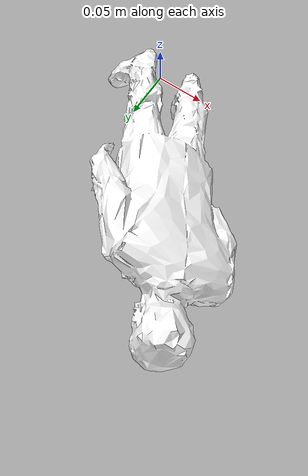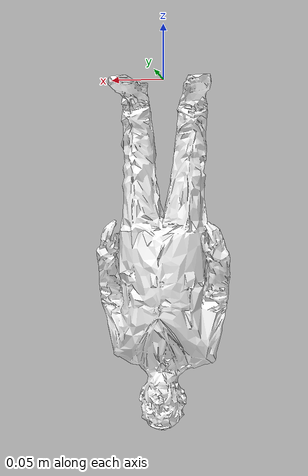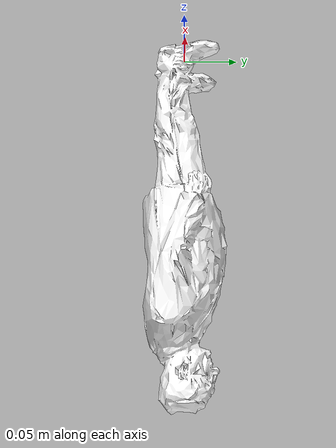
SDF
<?xml version="1.0" ?>
<sdf version="1.6">
  <model name="netanyaju">
    <static>true</static>
    <link name="base_link">

      <visual name="visual">
        <geometry>
          <mesh>
            <uri>model://netanyaju/meshes/netanyaju_trian.obj</uri>
            <scale>0.3 0.3 0.3</scale>
          </mesh>
        </geometry>

        <material>
          <diffuse>1 1 1 1</diffuse>
          <specular>0.5 0.5 0.5 1</specular>
          <pbr>
            <metal>
              <albedo_map>model://netanyaju/meshes/texture_pbr_20250901.png</albedo_map>
              <normal_map>model://netanyaju/meshes/texture_pbr_20250901_normal.png</normal_map>
              <metalness_map>model://netanyaju/meshes/texture_pbr_20250901_metallic.png</metalness_map>
              <roughness_map>model://netanyaju/meshes/texture_pbr_20250901_roughness.png</roughness_map>
            </metal>
          </pbr>
        </material>
      </visual>

      <collision name="collision">
        <geometry>
          <box>
            <size>0.05 0.05 0.2</size> </box>
        </geometry>
      </collision>

    </link>
  </model>
</sdf>
